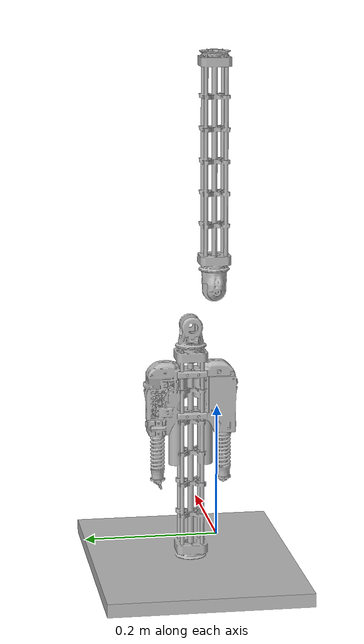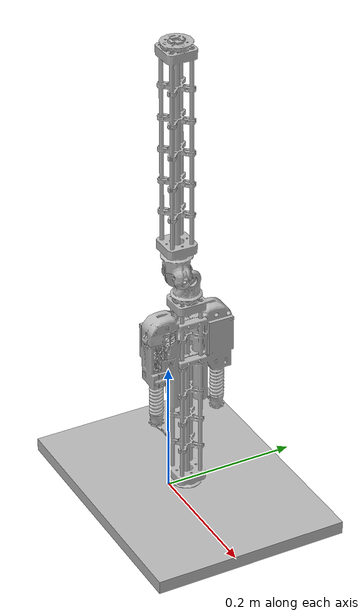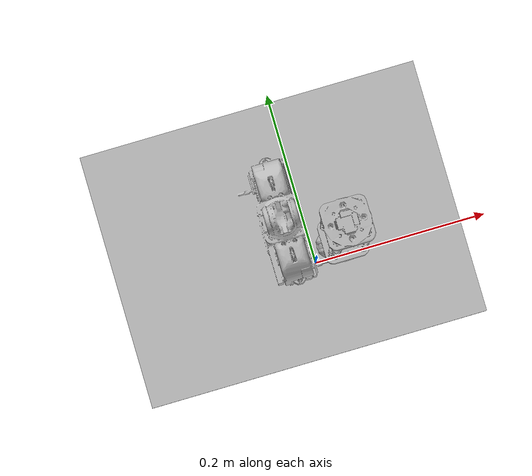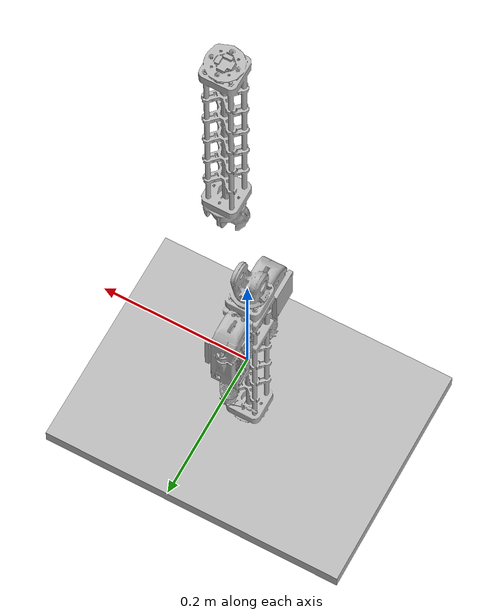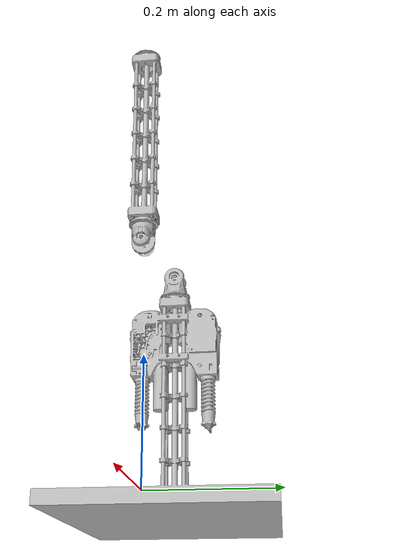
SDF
<sdf version="1.6">
	<model name="myo_arm_small">
		<link name="static_link">
			<pose frame="">0.0 0.0 0.0 1.5707963267948966 -0.0 0.0</pose>
			<inertial>
				<pose frame="">0.0001131354427155749 0.04538460749026542 -1.500388376110969e-05 0 0 0</pose>
				<mass>22.287427485437306</mass>
				<inertia>
					<ixx>0.3587508996548991</ixx>
					<ixy>-0.0006165614742970186</ixy>
					<ixz>8.156253386987656e-05</ixz>
					<iyy>0.39743693844524036</iyy>
					<iyz>0.00019432462885518817</iyz>
					<izz>0.464460009230258</izz>
				</inertia>
			</inertial>
			<collision name="static_link_collision">
				<geometry>
					<mesh>
						<uri>model://myo_arm_small/meshes/reduced_polygones/static_link.stl</uri>
						<scale>0.001 0.001 0.001</scale>
					</mesh>
				</geometry>
			</collision>
			<visual name="static_link_visual">
				<geometry>
					<mesh>
						<uri>model://myo_arm_small/meshes/reduced_polygones/static_link.stl</uri>
						<scale>0.001 0.001 0.001</scale>
					</mesh>
				</geometry>
			</visual>
		</link>
		<link name="moving_link">
			<pose frame="">0.0 0.0 0.0 1.5707963267948966 -0.0 0.0</pose>
			<inertial>
				<pose frame="">-2.182096160333867e-05 0.5531020318685964 -1.5930014569144107e-05 0 0 0</pose>
				<mass>0.4297385541373958</mass>
				<inertia>
					<ixx>0.13873853376190265</ixx>
					<ixy>5.187240982798265e-06</ixy>
					<ixz>3.870329187521234e-06</ixz>
					<iyy>0.00010615273423563294</iyy>
					<iyz>-3.9843991705225996e-08</iyz>
					<izz>0.1387416296363018</izz>
				</inertia>
			</inertial>
			<collision name="moving_link_collision">
				<geometry>
					<mesh>
						<uri>model://myo_arm_small/meshes/reduced_polygones/moving_link.stl</uri>
						<scale>0.001 0.001 0.001</scale>
					</mesh>
				</geometry>
			</collision>
			<visual name="moving_link_visual">
				<geometry>
					<mesh>
						<uri>model://myo_arm_small/meshes/reduced_polygones/moving_link.stl</uri>
						<scale>0.001 0.001 0.001</scale>
					</mesh>
				</geometry>
			</visual>
		</link>

		<joint name="elbow" type="revolute">
			<parent>static_link</parent>
			<child>moving_link</child>
			<pose frame=""> 0.0 0.375 0.0 0 0 0 </pose>
			<axis>
				<xyz>1.0 0.0 0.0</xyz>
				<limit>
					<lower>-1.5707963267948966</lower>
					<upper>1.5707963267948966</upper>
				</limit>
				<use_parent_model_frame>1</use_parent_model_frame>
			</axis>
		</joint>

	<plugin filename="libWalkController.so" name="walkController">
     		<myoMuscle name="motor0">
      			<link name="moving_link">
       				<viaPoint type="FIXPOINT">0.002315 0.317291 -0.032632</viaPoint>
      			</link>
      			<link name="static_link">
        			<viaPoint type="FIXPOINT">0.008450 0.389707 -0.013005</viaPoint>
      			</link>
        		<motor>
        			<bemf_constant>0.001488</bemf_constant>
        			<torque_constant>14.2</torque_constant>
        			<inductance>0.118</inductance>
        			<resistance>0.797</resistance>
        			<inertiaMoment>4.09</inertiaMoment>
        		</motor>
        		<gear>
        			<ratio>53</ratio>
        			<efficiency>0.59</efficiency>
        			<inertiaMoment>0.4</inertiaMoment>
        		</gear>
       			<spindle>
        			<radius>0.005</radius>
       			</spindle>
       			<SEE>
        			<stiffness>1.0</stiffness>

        			<length>0.1</length>
         		</SEE>
			<spanningJoint name="elbow">extensor</spanningJoint>
        	</myoMuscle>
		<myoMuscle name="motor1">
      			<link name="moving_link">
       				<viaPoint type="FIXPOINT">0.000129 0.318749 0.031225</viaPoint>
      			</link>
      			<link name="static_link">
        			<viaPoint type="FIXPOINT">-0.007569 0.389273 0.012184</viaPoint>
      			</link>
        		<motor>
        			<bemf_constant>0.001488</bemf_constant>
        			<torque_constant>14.2</torque_constant>
        			<inductance>0.118</inductance>
        			<resistance>0.797</resistance>
        			<inertiaMoment>4.09</inertiaMoment>
        		</motor>
        		<gear>
        			<ratio>53</ratio>
        			<efficiency>0.59</efficiency>
        			<inertiaMoment>0.4</inertiaMoment>
        		</gear>
       			<spindle>
        			<radius>0.005</radius>
       			</spindle>
       			<SEE>
        			<stiffness>1.0</stiffness>

        			<length>0.1</length>
         		</SEE>
			<spanningJoint name="elbow">flexor</spanningJoint>
        	</myoMuscle>
    	</plugin>

	</model>
</sdf>
